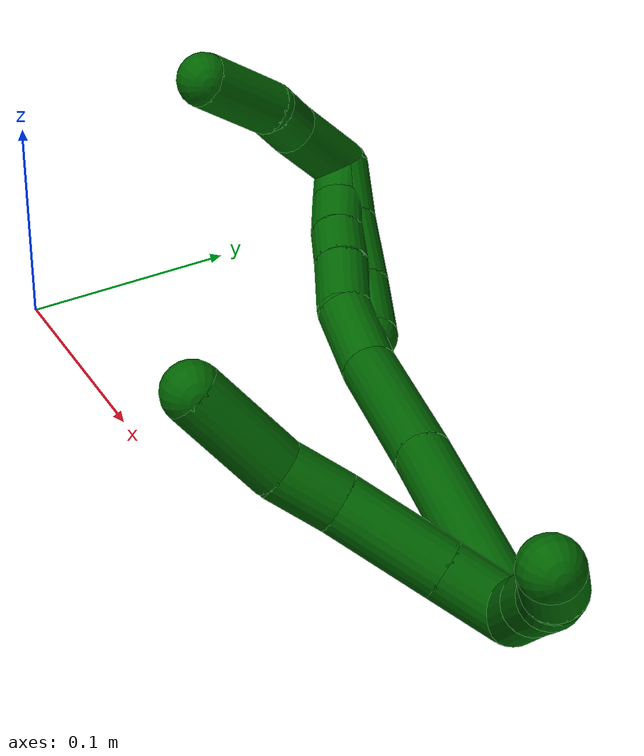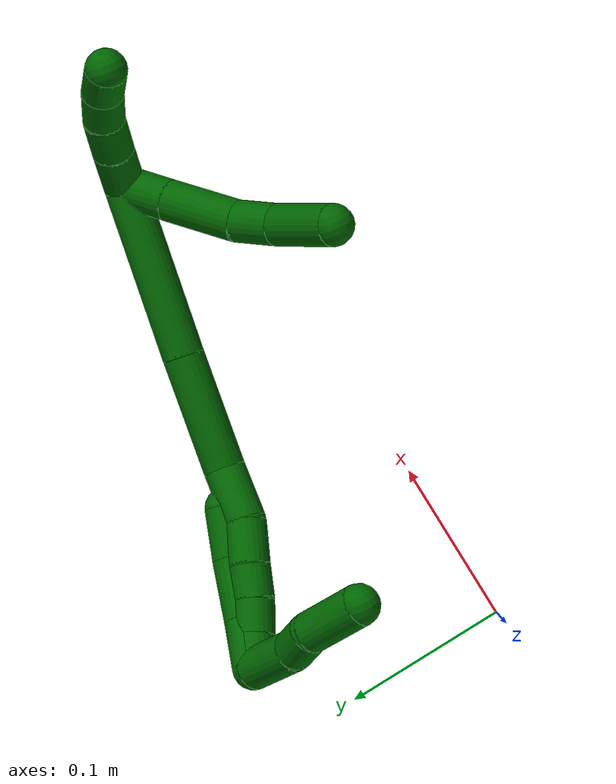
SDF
<sdf version="1.7">
 <world name="default">
  <model name="6">
   <static>0</static>
   <link name="6">
    <collision name="collision-cylinder-e_1_2_8">
     <pose>0.004514 -0.012886 -0.00698 2.06721 0.298803 0.49507</pose>
     <geometry><cylinder><radius>0.0125</radius><length>0.030669</length></cylinder></geometry>
     <surface>
      <friction><ode><mu>1.16</mu><mu2>1.16</mu2><slip1>0</slip1><slip2>0</slip2></ode></friction>
      <contact><ode><kp>1e+06</kp><kd>1</kd><max_vel>0</max_vel><min_depth>0.001</min_depth></ode></contact>
     </surface>
    </collision>
    <visual name="visual-cylinder-e_1_2_8">
     <pose>0.004514 -0.012886 -0.00698 2.06721 0.298803 0.49507</pose>
     <geometry><cylinder><radius>0.0125</radius><length>0.030669</length></cylinder></geometry>
     <material><ambient>0 0.392157 0.003922 1</ambient></material>
    </visual>
    <collision name="collision-cylinder-e_2_8_9">
     <pose>0.015858 -0.045481 -0.024307 2.05425 0.297699 0.486377</pose>
     <geometry><cylinder><radius>0.0125</radius><length>0.046569</length></cylinder></geometry>
     <surface>
      <friction><ode><mu>1.16</mu><mu2>1.16</mu2><slip1>0</slip1><slip2>0</slip2></ode></friction>
      <contact><ode><kp>1e+06</kp><kd>1</kd><max_vel>0</max_vel><min_depth>0.001</min_depth></ode></contact>
     </surface>
    </collision>
    <visual name="visual-cylinder-e_2_8_9">
     <pose>0.015858 -0.045481 -0.024307 2.05425 0.297699 0.486377</pose>
     <geometry><cylinder><radius>0.0125</radius><length>0.046569</length></cylinder></geometry>
     <material><ambient>0 0.392157 0.003922 1</ambient></material>
    </visual>
    <collision name="collision-cylinder-e_3_9_10">
     <pose>0.02712 -0.077339 -0.03817 1.85245 0.337096 0.445253</pose>
     <geometry><cylinder><radius>0.0125</radius><length>0.026804</length></cylinder></geometry>
     <surface>
      <friction><ode><mu>1.16</mu><mu2>1.16</mu2><slip1>0</slip1><slip2>0</slip2></ode></friction>
      <contact><ode><kp>1e+06</kp><kd>1</kd><max_vel>0</max_vel><min_depth>0.001</min_depth></ode></contact>
     </surface>
    </collision>
    <visual name="visual-cylinder-e_3_9_10">
     <pose>0.02712 -0.077339 -0.03817 1.85245 0.337096 0.445253</pose>
     <geometry><cylinder><radius>0.0125</radius><length>0.026804</length></cylinder></geometry>
     <material><ambient>0 0.392157 0.003922 1</ambient></material>
    </visual>
    <collision name="collision-cylinder-e_4_10_6">
     <pose>0.034405 -0.112206 -0.04364 1.65664 0.124416 0.135549</pose>
     <geometry><cylinder><radius>0.0125</radius><length>0.045959</length></cylinder></geometry>
     <surface>
      <friction><ode><mu>1.16</mu><mu2>1.16</mu2><slip1>0</slip1><slip2>0</slip2></ode></friction>
      <contact><ode><kp>1e+06</kp><kd>1</kd><max_vel>0</max_vel><min_depth>0.001</min_depth></ode></contact>
     </surface>
    </collision>
    <visual name="visual-cylinder-e_4_10_6">
     <pose>0.034405 -0.112206 -0.04364 1.65664 0.124416 0.135549</pose>
     <geometry><cylinder><radius>0.0125</radius><length>0.045959</length></cylinder></geometry>
     <material><ambient>0 0.392157 0.003922 1</ambient></material>
    </visual>
    <collision name="collision-cylinder-e_1_2_11">
     <pose>-0.003776 -0.007651 0.012824 0.537929 -0.247703 -0.068602</pose>
     <geometry><cylinder><radius>0.0125</radius><length>0.030805</length></cylinder></geometry>
     <surface>
      <friction><ode><mu>1.16</mu><mu2>1.16</mu2><slip1>0</slip1><slip2>0</slip2></ode></friction>
      <contact><ode><kp>1e+06</kp><kd>1</kd><max_vel>0</max_vel><min_depth>0.001</min_depth></ode></contact>
     </surface>
    </collision>
    <visual name="visual-cylinder-e_1_2_11">
     <pose>-0.003776 -0.007651 0.012824 0.537929 -0.247703 -0.068602</pose>
     <geometry><cylinder><radius>0.0125</radius><length>0.030805</length></cylinder></geometry>
     <material><ambient>0 0.392157 0.003922 1</ambient></material>
    </visual>
    <collision name="collision-cylinder-e_2_11_12">
     <pose>-0.010243 -0.021348 0.03623 0.519069 -0.217222 -0.057889</pose>
     <geometry><cylinder><radius>0.0125</radius><length>0.024963</length></cylinder></geometry>
     <surface>
      <friction><ode><mu>1.16</mu><mu2>1.16</mu2><slip1>0</slip1><slip2>0</slip2></ode></friction>
      <contact><ode><kp>1e+06</kp><kd>1</kd><max_vel>0</max_vel><min_depth>0.001</min_depth></ode></contact>
     </surface>
    </collision>
    <visual name="visual-cylinder-e_2_11_12">
     <pose>-0.010243 -0.021348 0.03623 0.519069 -0.217222 -0.057889</pose>
     <geometry><cylinder><radius>0.0125</radius><length>0.024963</length></cylinder></geometry>
     <material><ambient>0 0.392157 0.003922 1</ambient></material>
    </visual>
    <collision name="collision-cylinder-e_3_12_13">
     <pose>-0.013972 -0.033915 0.055379 0.650652 -0.096209 -0.032474</pose>
     <geometry><cylinder><radius>0.0125</radius><length>0.021631</length></cylinder></geometry>
     <surface>
      <friction><ode><mu>1.16</mu><mu2>1.16</mu2><slip1>0</slip1><slip2>0</slip2></ode></friction>
      <contact><ode><kp>1e+06</kp><kd>1</kd><max_vel>0</max_vel><min_depth>0.001</min_depth></ode></contact>
     </surface>
    </collision>
    <visual name="visual-cylinder-e_3_12_13">
     <pose>-0.013972 -0.033915 0.055379 0.650652 -0.096209 -0.032474</pose>
     <geometry><cylinder><radius>0.0125</radius><length>0.021631</length></cylinder></geometry>
     <material><ambient>0 0.392157 0.003922 1</ambient></material>
    </visual>
    <collision name="collision-cylinder-e_4_13_5">
     <pose>-0.016296 -0.049036 0.071162 0.872626 -0.113952 -0.053179</pose>
     <geometry><cylinder><radius>0.0125</radius><length>0.022601</length></cylinder></geometry>
     <surface>
      <friction><ode><mu>1.16</mu><mu2>1.16</mu2><slip1>0</slip1><slip2>0</slip2></ode></friction>
      <contact><ode><kp>1e+06</kp><kd>1</kd><max_vel>0</max_vel><min_depth>0.001</min_depth></ode></contact>
     </surface>
    </collision>
    <visual name="visual-cylinder-e_4_13_5">
     <pose>-0.016296 -0.049036 0.071162 0.872626 -0.113952 -0.053179</pose>
     <geometry><cylinder><radius>0.0125</radius><length>0.022601</length></cylinder></geometry>
     <material><ambient>0 0.392157 0.003922 1</ambient></material>
    </visual>
    <collision name="collision-cylinder-e_1_2_14">
     <pose>-0.007955 -0.00826 -0.051472 2.98247 -0.151437 -1.52113</pose>
     <geometry><cylinder><radius>0.0125</radius><length>0.105468</length></cylinder></geometry>
     <surface>
      <friction><ode><mu>1.16</mu><mu2>1.16</mu2><slip1>0</slip1><slip2>0</slip2></ode></friction>
      <contact><ode><kp>1e+06</kp><kd>1</kd><max_vel>0</max_vel><min_depth>0.001</min_depth></ode></contact>
     </surface>
    </collision>
    <visual name="visual-cylinder-e_1_2_14">
     <pose>-0.007955 -0.00826 -0.051472 2.98247 -0.151437 -1.52113</pose>
     <geometry><cylinder><radius>0.0125</radius><length>0.105468</length></cylinder></geometry>
     <material><ambient>0 0.392157 0.003922 1</ambient></material>
    </visual>
    <collision name="collision-cylinder-e_2_14_15">
     <pose>-0.020544 -0.022011 -0.138029 2.98634 -0.129736 -1.39159</pose>
     <geometry><cylinder><radius>0.0125</radius><length>0.071626</length></cylinder></geometry>
     <surface>
      <friction><ode><mu>1.16</mu><mu2>1.16</mu2><slip1>0</slip1><slip2>0</slip2></ode></friction>
      <contact><ode><kp>1e+06</kp><kd>1</kd><max_vel>0</max_vel><min_depth>0.001</min_depth></ode></contact>
     </surface>
    </collision>
    <visual name="visual-cylinder-e_2_14_15">
     <pose>-0.020544 -0.022011 -0.138029 2.98634 -0.129736 -1.39159</pose>
     <geometry><cylinder><radius>0.0125</radius><length>0.071626</length></cylinder></geometry>
     <material><ambient>0 0.392157 0.003922 1</ambient></material>
    </visual>
    <collision name="collision-cylinder-e_3_15_16">
     <pose>-0.029788 -0.035123 -0.187811 2.66324 -0.27161 -1.02155</pose>
     <geometry><cylinder><radius>0.0125</radius><length>0.03437</length></cylinder></geometry>
     <surface>
      <friction><ode><mu>1.16</mu><mu2>1.16</mu2><slip1>0</slip1><slip2>0</slip2></ode></friction>
      <contact><ode><kp>1e+06</kp><kd>1</kd><max_vel>0</max_vel><min_depth>0.001</min_depth></ode></contact>
     </surface>
    </collision>
    <visual name="visual-cylinder-e_3_15_16">
     <pose>-0.029788 -0.035123 -0.187811 2.66324 -0.27161 -1.02155</pose>
     <geometry><cylinder><radius>0.0125</radius><length>0.03437</length></cylinder></geometry>
     <material><ambient>0 0.392157 0.003922 1</ambient></material>
    </visual>
    <collision name="collision-cylinder-e_4_16_17">
     <pose>-0.04096 -0.046456 -0.213529 2.81674 -0.513703 -2.02597</pose>
     <geometry><cylinder><radius>0.0125</radius><length>0.026706</length></cylinder></geometry>
     <surface>
      <friction><ode><mu>1.16</mu><mu2>1.16</mu2><slip1>0</slip1><slip2>0</slip2></ode></friction>
      <contact><ode><kp>1e+06</kp><kd>1</kd><max_vel>0</max_vel><min_depth>0.001</min_depth></ode></contact>
     </surface>
    </collision>
    <visual name="visual-cylinder-e_4_16_17">
     <pose>-0.04096 -0.046456 -0.213529 2.81674 -0.513703 -2.02597</pose>
     <geometry><cylinder><radius>0.0125</radius><length>0.026706</length></cylinder></geometry>
     <material><ambient>0 0.392157 0.003922 1</ambient></material>
    </visual>
    <collision name="collision-cylinder-e_5_17_18">
     <pose>-0.051962 -0.052697 -0.233285 2.85969 -0.454241 -2.04034</pose>
     <geometry><cylinder><radius>0.0125</radius><length>0.020239</length></cylinder></geometry>
     <surface>
      <friction><ode><mu>1.16</mu><mu2>1.16</mu2><slip1>0</slip1><slip2>0</slip2></ode></friction>
      <contact><ode><kp>1e+06</kp><kd>1</kd><max_vel>0</max_vel><min_depth>0.001</min_depth></ode></contact>
     </surface>
    </collision>
    <visual name="visual-cylinder-e_5_17_18">
     <pose>-0.051962 -0.052697 -0.233285 2.85969 -0.454241 -2.04034</pose>
     <geometry><cylinder><radius>0.0125</radius><length>0.020239</length></cylinder></geometry>
     <material><ambient>0 0.392157 0.003922 1</ambient></material>
    </visual>
    <collision name="collision-cylinder-e_6_18_19">
     <pose>-0.06196 -0.057132 -0.250993 2.9324 -0.544694 -2.42249</pose>
     <geometry><cylinder><radius>0.0125</radius><length>0.021453</length></cylinder></geometry>
     <surface>
      <friction><ode><mu>1.16</mu><mu2>1.16</mu2><slip1>0</slip1><slip2>0</slip2></ode></friction>
      <contact><ode><kp>1e+06</kp><kd>1</kd><max_vel>0</max_vel><min_depth>0.001</min_depth></ode></contact>
     </surface>
    </collision>
    <visual name="visual-cylinder-e_6_18_19">
     <pose>-0.06196 -0.057132 -0.250993 2.9324 -0.544694 -2.42249</pose>
     <geometry><cylinder><radius>0.0125</radius><length>0.021453</length></cylinder></geometry>
     <material><ambient>0 0.392157 0.003922 1</ambient></material>
    </visual>
    <collision name="collision-cylinder-e_7_19_1">
     <pose>-0.073816 -0.06246 -0.267038 2.69071 -0.675815 -1.98508</pose>
     <geometry><cylinder><radius>0.0125</radius><length>0.020138</length></cylinder></geometry>
     <surface>
      <friction><ode><mu>1.16</mu><mu2>1.16</mu2><slip1>0</slip1><slip2>0</slip2></ode></friction>
      <contact><ode><kp>1e+06</kp><kd>1</kd><max_vel>0</max_vel><min_depth>0.001</min_depth></ode></contact>
     </surface>
    </collision>
    <visual name="visual-cylinder-e_7_19_1">
     <pose>-0.073816 -0.06246 -0.267038 2.69071 -0.675815 -1.98508</pose>
     <geometry><cylinder><radius>0.0125</radius><length>0.020138</length></cylinder></geometry>
     <material><ambient>0 0.392157 0.003922 1</ambient></material>
    </visual>
    <collision name="collision-cylinder-e_1_1_20">
     <pose>-0.075866 -0.083471 -0.268925 1.28422 0.227703 0.170607</pose>
     <geometry><cylinder><radius>0.0125</radius><length>0.037643</length></cylinder></geometry>
     <surface>
      <friction><ode><mu>1.16</mu><mu2>1.16</mu2><slip1>0</slip1><slip2>0</slip2></ode></friction>
      <contact><ode><kp>1e+06</kp><kd>1</kd><max_vel>0</max_vel><min_depth>0.001</min_depth></ode></contact>
     </surface>
    </collision>
    <visual name="visual-cylinder-e_1_1_20">
     <pose>-0.075866 -0.083471 -0.268925 1.28422 0.227703 0.170607</pose>
     <geometry><cylinder><radius>0.0125</radius><length>0.037643</length></cylinder></geometry>
     <material><ambient>0 0.392157 0.003922 1</ambient></material>
    </visual>
    <collision name="collision-cylinder-e_2_20_21">
     <pose>-0.069988 -0.110477 -0.258088 1.03008 0.147248 0.083444</pose>
     <geometry><cylinder><radius>0.0125</radius><length>0.022211</length></cylinder></geometry>
     <surface>
      <friction><ode><mu>1.16</mu><mu2>1.16</mu2><slip1>0</slip1><slip2>0</slip2></ode></friction>
      <contact><ode><kp>1e+06</kp><kd>1</kd><max_vel>0</max_vel><min_depth>0.001</min_depth></ode></contact>
     </surface>
    </collision>
    <visual name="visual-cylinder-e_2_20_21">
     <pose>-0.069988 -0.110477 -0.258088 1.03008 0.147248 0.083444</pose>
     <geometry><cylinder><radius>0.0125</radius><length>0.022211</length></cylinder></geometry>
     <material><ambient>0 0.392157 0.003922 1</ambient></material>
    </visual>
    <collision name="collision-cylinder-e_3_21_4">
     <pose>-0.060314 -0.13731 -0.246522 1.24356 0.412353 0.297536</pose>
     <geometry><cylinder><radius>0.0125</radius><length>0.040147</length></cylinder></geometry>
     <surface>
      <friction><ode><mu>1.16</mu><mu2>1.16</mu2><slip1>0</slip1><slip2>0</slip2></ode></friction>
      <contact><ode><kp>1e+06</kp><kd>1</kd><max_vel>0</max_vel><min_depth>0.001</min_depth></ode></contact>
     </surface>
    </collision>
    <visual name="visual-cylinder-e_3_21_4">
     <pose>-0.060314 -0.13731 -0.246522 1.24356 0.412353 0.297536</pose>
     <geometry><cylinder><radius>0.0125</radius><length>0.040147</length></cylinder></geometry>
     <material><ambient>0 0.392157 0.003922 1</ambient></material>
    </visual>
    <collision name="collision-cylinder-e_1_1_22">
     <pose>-0.072372 -0.0585 -0.263255 -0.597378 0.532976 -0.167708</pose>
     <geometry><cylinder><radius>0.0125</radius><length>0.03048</length></cylinder></geometry>
     <surface>
      <friction><ode><mu>1.16</mu><mu2>1.16</mu2><slip1>0</slip1><slip2>0</slip2></ode></friction>
      <contact><ode><kp>1e+06</kp><kd>1</kd><max_vel>0</max_vel><min_depth>0.001</min_depth></ode></contact>
     </surface>
    </collision>
    <visual name="visual-cylinder-e_1_1_22">
     <pose>-0.072372 -0.0585 -0.263255 -0.597378 0.532976 -0.167708</pose>
     <geometry><cylinder><radius>0.0125</radius><length>0.03048</length></cylinder></geometry>
     <material><ambient>0 0.392157 0.003922 1</ambient></material>
    </visual>
    <collision name="collision-cylinder-e_2_22_23">
     <pose>-0.05644 -0.044007 -0.236732 -0.425949 0.444127 -0.097577</pose>
     <geometry><cylinder><radius>0.0125</radius><length>0.038114</length></cylinder></geometry>
     <surface>
      <friction><ode><mu>1.16</mu><mu2>1.16</mu2><slip1>0</slip1><slip2>0</slip2></ode></friction>
      <contact><ode><kp>1e+06</kp><kd>1</kd><max_vel>0</max_vel><min_depth>0.001</min_depth></ode></contact>
     </surface>
    </collision>
    <visual name="visual-cylinder-e_2_22_23">
     <pose>-0.05644 -0.044007 -0.236732 -0.425949 0.444127 -0.097577</pose>
     <geometry><cylinder><radius>0.0125</radius><length>0.038114</length></cylinder></geometry>
     <material><ambient>0 0.392157 0.003922 1</ambient></material>
    </visual>
    <collision name="collision-cylinder-e_3_23_3">
     <pose>-0.041796 -0.032955 -0.2073 -0.278951 0.423694 -0.060369</pose>
     <geometry><cylinder><radius>0.0125</radius><length>0.031406</length></cylinder></geometry>
     <surface>
      <friction><ode><mu>1.16</mu><mu2>1.16</mu2><slip1>0</slip1><slip2>0</slip2></ode></friction>
      <contact><ode><kp>1e+06</kp><kd>1</kd><max_vel>0</max_vel><min_depth>0.001</min_depth></ode></contact>
     </surface>
    </collision>
    <visual name="visual-cylinder-e_3_23_3">
     <pose>-0.041796 -0.032955 -0.2073 -0.278951 0.423694 -0.060369</pose>
     <geometry><cylinder><radius>0.0125</radius><length>0.031406</length></cylinder></geometry>
     <material><ambient>0 0.392157 0.003922 1</ambient></material>
    </visual>
    <collision name="collision-sphere-3">
     <pose>-0.03534 -0.029014 -0.193539 0 -0 0</pose>
     <geometry><sphere><radius>0.0125</radius></sphere></geometry>
     <surface>
      <friction><ode><mu>1.16</mu><mu2>1.16</mu2><slip1>0</slip1><slip2>0</slip2></ode></friction>
      <contact><ode><kp>1e+06</kp><kd>1</kd><max_vel>0</max_vel><min_depth>0.001</min_depth></ode></contact>
     </surface>
    </collision>
    <visual name="visual-sphere-3">
     <pose>-0.03534 -0.029014 -0.193539 0 -0 0</pose>
     <geometry><sphere><radius>0.0125</radius></sphere></geometry>
     <material><ambient>0 0.392157 0.003922 1</ambient></material>
    </visual>
    <collision name="collision-sphere-23">
     <pose>-0.048252 -0.036897 -0.221061 0 -0 0</pose>
     <geometry><sphere><radius>0.0125</radius></sphere></geometry>
     <surface>
      <friction><ode><mu>1.16</mu><mu2>1.16</mu2><slip1>0</slip1><slip2>0</slip2></ode></friction>
      <contact><ode><kp>1e+06</kp><kd>1</kd><max_vel>0</max_vel><min_depth>0.001</min_depth></ode></contact>
     </surface>
    </collision>
    <visual name="visual-sphere-23">
     <pose>-0.048252 -0.036897 -0.221061 0 -0 0</pose>
     <geometry><sphere><radius>0.0125</radius></sphere></geometry>
     <material><ambient>0 0.392157 0.003922 1</ambient></material>
    </visual>
    <collision name="collision-sphere-22">
     <pose>-0.064628 -0.051117 -0.252402 0 -0 0</pose>
     <geometry><sphere><radius>0.0125</radius></sphere></geometry>
     <surface>
      <friction><ode><mu>1.16</mu><mu2>1.16</mu2><slip1>0</slip1><slip2>0</slip2></ode></friction>
      <contact><ode><kp>1e+06</kp><kd>1</kd><max_vel>0</max_vel><min_depth>0.001</min_depth></ode></contact>
     </surface>
    </collision>
    <visual name="visual-sphere-22">
     <pose>-0.064628 -0.051117 -0.252402 0 -0 0</pose>
     <geometry><sphere><radius>0.0125</radius></sphere></geometry>
     <material><ambient>0 0.392157 0.003922 1</ambient></material>
    </visual>
    <collision name="collision-sphere-4">
     <pose>-0.052269 -0.154725 -0.240611 0 -0 0</pose>
     <geometry><sphere><radius>0.0125</radius></sphere></geometry>
     <surface>
      <friction><ode><mu>1.16</mu><mu2>1.16</mu2><slip1>0</slip1><slip2>0</slip2></ode></friction>
      <contact><ode><kp>1e+06</kp><kd>1</kd><max_vel>0</max_vel><min_depth>0.001</min_depth></ode></contact>
     </surface>
    </collision>
    <visual name="visual-sphere-4">
     <pose>-0.052269 -0.154725 -0.240611 0 -0 0</pose>
     <geometry><sphere><radius>0.0125</radius></sphere></geometry>
     <material><ambient>0 0.392157 0.003922 1</ambient></material>
    </visual>
    <collision name="collision-sphere-21">
     <pose>-0.068359 -0.119895 -0.252433 0 -0 0</pose>
     <geometry><sphere><radius>0.0125</radius></sphere></geometry>
     <surface>
      <friction><ode><mu>1.16</mu><mu2>1.16</mu2><slip1>0</slip1><slip2>0</slip2></ode></friction>
      <contact><ode><kp>1e+06</kp><kd>1</kd><max_vel>0</max_vel><min_depth>0.001</min_depth></ode></contact>
     </surface>
    </collision>
    <visual name="visual-sphere-21">
     <pose>-0.068359 -0.119895 -0.252433 0 -0 0</pose>
     <geometry><sphere><radius>0.0125</radius></sphere></geometry>
     <material><ambient>0 0.392157 0.003922 1</ambient></material>
    </visual>
    <collision name="collision-sphere-20">
     <pose>-0.071617 -0.101059 -0.263742 0 -0 0</pose>
     <geometry><sphere><radius>0.0125</radius></sphere></geometry>
     <surface>
      <friction><ode><mu>1.16</mu><mu2>1.16</mu2><slip1>0</slip1><slip2>0</slip2></ode></friction>
      <contact><ode><kp>1e+06</kp><kd>1</kd><max_vel>0</max_vel><min_depth>0.001</min_depth></ode></contact>
     </surface>
    </collision>
    <visual name="visual-sphere-20">
     <pose>-0.071617 -0.101059 -0.263742 0 -0 0</pose>
     <geometry><sphere><radius>0.0125</radius></sphere></geometry>
     <material><ambient>0 0.392157 0.003922 1</ambient></material>
    </visual>
    <collision name="collision-sphere-11">
     <pose>-0.007553 -0.015302 0.025647 0 -0 0</pose>
     <geometry><sphere><radius>0.0125</radius></sphere></geometry>
     <surface>
      <friction><ode><mu>1.16</mu><mu2>1.16</mu2><slip1>0</slip1><slip2>0</slip2></ode></friction>
      <contact><ode><kp>1e+06</kp><kd>1</kd><max_vel>0</max_vel><min_depth>0.001</min_depth></ode></contact>
     </surface>
    </collision>
    <visual name="visual-sphere-11">
     <pose>-0.007553 -0.015302 0.025647 0 -0 0</pose>
     <geometry><sphere><radius>0.0125</radius></sphere></geometry>
     <material><ambient>0 0.392157 0.003922 1</ambient></material>
    </visual>
    <collision name="collision-sphere-6">
     <pose>0.037256 -0.134924 -0.045595 0 -0 0</pose>
     <geometry><sphere><radius>0.0125</radius></sphere></geometry>
     <surface>
      <friction><ode><mu>1.16</mu><mu2>1.16</mu2><slip1>0</slip1><slip2>0</slip2></ode></friction>
      <contact><ode><kp>1e+06</kp><kd>1</kd><max_vel>0</max_vel><min_depth>0.001</min_depth></ode></contact>
     </surface>
    </collision>
    <visual name="visual-sphere-6">
     <pose>0.037256 -0.134924 -0.045595 0 -0 0</pose>
     <geometry><sphere><radius>0.0125</radius></sphere></geometry>
     <material><ambient>0 0.392157 0.003922 1</ambient></material>
    </visual>
    <collision name="collision-sphere-10">
     <pose>0.031553 -0.089489 -0.041685 0 -0 0</pose>
     <geometry><sphere><radius>0.0125</radius></sphere></geometry>
     <surface>
      <friction><ode><mu>1.16</mu><mu2>1.16</mu2><slip1>0</slip1><slip2>0</slip2></ode></friction>
      <contact><ode><kp>1e+06</kp><kd>1</kd><max_vel>0</max_vel><min_depth>0.001</min_depth></ode></contact>
     </surface>
    </collision>
    <visual name="visual-sphere-10">
     <pose>0.031553 -0.089489 -0.041685 0 -0 0</pose>
     <geometry><sphere><radius>0.0125</radius></sphere></geometry>
     <material><ambient>0 0.392157 0.003922 1</ambient></material>
    </visual>
    <collision name="collision-sphere-9">
     <pose>0.022688 -0.06519 -0.034654 0 -0 0</pose>
     <geometry><sphere><radius>0.0125</radius></sphere></geometry>
     <surface>
      <friction><ode><mu>1.16</mu><mu2>1.16</mu2><slip1>0</slip1><slip2>0</slip2></ode></friction>
      <contact><ode><kp>1e+06</kp><kd>1</kd><max_vel>0</max_vel><min_depth>0.001</min_depth></ode></contact>
     </surface>
    </collision>
    <visual name="visual-sphere-9">
     <pose>0.022688 -0.06519 -0.034654 0 -0 0</pose>
     <geometry><sphere><radius>0.0125</radius></sphere></geometry>
     <material><ambient>0 0.392157 0.003922 1</ambient></material>
    </visual>
    <collision name="collision-sphere-2">
     <geometry><sphere><radius>0.0125</radius></sphere></geometry>
     <surface>
      <friction><ode><mu>1.16</mu><mu2>1.16</mu2><slip1>0</slip1><slip2>0</slip2></ode></friction>
      <contact><ode><kp>1e+06</kp><kd>1</kd><max_vel>0</max_vel><min_depth>0.001</min_depth></ode></contact>
     </surface>
    </collision>
    <visual name="visual-sphere-2">
     <geometry><sphere><radius>0.0125</radius></sphere></geometry>
     <material><ambient>0 0.392157 0.003922 1</ambient></material>
    </visual>
    <collision name="collision-sphere-19">
     <pose>-0.067518 -0.059037 -0.259967 0 -0 0</pose>
     <geometry><sphere><radius>0.0125</radius></sphere></geometry>
     <surface>
      <friction><ode><mu>1.16</mu><mu2>1.16</mu2><slip1>0</slip1><slip2>0</slip2></ode></friction>
      <contact><ode><kp>1e+06</kp><kd>1</kd><max_vel>0</max_vel><min_depth>0.001</min_depth></ode></contact>
     </surface>
    </collision>
    <visual name="visual-sphere-19">
     <pose>-0.067518 -0.059037 -0.259967 0 -0 0</pose>
     <geometry><sphere><radius>0.0125</radius></sphere></geometry>
     <material><ambient>0 0.392157 0.003922 1</ambient></material>
    </visual>
    <collision name="collision-sphere-8">
     <pose>0.009028 -0.025772 -0.01396 0 -0 0</pose>
     <geometry><sphere><radius>0.0125</radius></sphere></geometry>
     <surface>
      <friction><ode><mu>1.16</mu><mu2>1.16</mu2><slip1>0</slip1><slip2>0</slip2></ode></friction>
      <contact><ode><kp>1e+06</kp><kd>1</kd><max_vel>0</max_vel><min_depth>0.001</min_depth></ode></contact>
     </surface>
    </collision>
    <visual name="visual-sphere-8">
     <pose>0.009028 -0.025772 -0.01396 0 -0 0</pose>
     <geometry><sphere><radius>0.0125</radius></sphere></geometry>
     <material><ambient>0 0.392157 0.003922 1</ambient></material>
    </visual>
    <collision name="collision-sphere-12">
     <pose>-0.012933 -0.027394 0.046813 0 -0 0</pose>
     <geometry><sphere><radius>0.0125</radius></sphere></geometry>
     <surface>
      <friction><ode><mu>1.16</mu><mu2>1.16</mu2><slip1>0</slip1><slip2>0</slip2></ode></friction>
      <contact><ode><kp>1e+06</kp><kd>1</kd><max_vel>0</max_vel><min_depth>0.001</min_depth></ode></contact>
     </surface>
    </collision>
    <visual name="visual-sphere-12">
     <pose>-0.012933 -0.027394 0.046813 0 -0 0</pose>
     <geometry><sphere><radius>0.0125</radius></sphere></geometry>
     <material><ambient>0 0.392157 0.003922 1</ambient></material>
    </visual>
    <collision name="collision-sphere-13">
     <pose>-0.015011 -0.040436 0.063945 0 -0 0</pose>
     <geometry><sphere><radius>0.0125</radius></sphere></geometry>
     <surface>
      <friction><ode><mu>1.16</mu><mu2>1.16</mu2><slip1>0</slip1><slip2>0</slip2></ode></friction>
      <contact><ode><kp>1e+06</kp><kd>1</kd><max_vel>0</max_vel><min_depth>0.001</min_depth></ode></contact>
     </surface>
    </collision>
    <visual name="visual-sphere-13">
     <pose>-0.015011 -0.040436 0.063945 0 -0 0</pose>
     <geometry><sphere><radius>0.0125</radius></sphere></geometry>
     <material><ambient>0 0.392157 0.003922 1</ambient></material>
    </visual>
    <collision name="collision-sphere-5">
     <pose>-0.01758 -0.057636 0.078379 0 -0 0</pose>
     <geometry><sphere><radius>0.0125</radius></sphere></geometry>
     <surface>
      <friction><ode><mu>1.16</mu><mu2>1.16</mu2><slip1>0</slip1><slip2>0</slip2></ode></friction>
      <contact><ode><kp>1e+06</kp><kd>1</kd><max_vel>0</max_vel><min_depth>0.001</min_depth></ode></contact>
     </surface>
    </collision>
    <visual name="visual-sphere-5">
     <pose>-0.01758 -0.057636 0.078379 0 -0 0</pose>
     <geometry><sphere><radius>0.0125</radius></sphere></geometry>
     <material><ambient>0 0.392157 0.003922 1</ambient></material>
    </visual>
    <collision name="collision-sphere-14">
     <pose>-0.015911 -0.01652 -0.102944 0 -0 0</pose>
     <geometry><sphere><radius>0.0125</radius></sphere></geometry>
     <surface>
      <friction><ode><mu>1.16</mu><mu2>1.16</mu2><slip1>0</slip1><slip2>0</slip2></ode></friction>
      <contact><ode><kp>1e+06</kp><kd>1</kd><max_vel>0</max_vel><min_depth>0.001</min_depth></ode></contact>
     </surface>
    </collision>
    <visual name="visual-sphere-14">
     <pose>-0.015911 -0.01652 -0.102944 0 -0 0</pose>
     <geometry><sphere><radius>0.0125</radius></sphere></geometry>
     <material><ambient>0 0.392157 0.003922 1</ambient></material>
    </visual>
    <collision name="collision-sphere-15">
     <pose>-0.025177 -0.027503 -0.173114 0 -0 0</pose>
     <geometry><sphere><radius>0.0125</radius></sphere></geometry>
     <surface>
      <friction><ode><mu>1.16</mu><mu2>1.16</mu2><slip1>0</slip1><slip2>0</slip2></ode></friction>
      <contact><ode><kp>1e+06</kp><kd>1</kd><max_vel>0</max_vel><min_depth>0.001</min_depth></ode></contact>
     </surface>
    </collision>
    <visual name="visual-sphere-15">
     <pose>-0.025177 -0.027503 -0.173114 0 -0 0</pose>
     <geometry><sphere><radius>0.0125</radius></sphere></geometry>
     <material><ambient>0 0.392157 0.003922 1</ambient></material>
    </visual>
    <collision name="collision-sphere-16">
     <pose>-0.034398 -0.042744 -0.202507 0 -0 0</pose>
     <geometry><sphere><radius>0.0125</radius></sphere></geometry>
     <surface>
      <friction><ode><mu>1.16</mu><mu2>1.16</mu2><slip1>0</slip1><slip2>0</slip2></ode></friction>
      <contact><ode><kp>1e+06</kp><kd>1</kd><max_vel>0</max_vel><min_depth>0.001</min_depth></ode></contact>
     </surface>
    </collision>
    <visual name="visual-sphere-16">
     <pose>-0.034398 -0.042744 -0.202507 0 -0 0</pose>
     <geometry><sphere><radius>0.0125</radius></sphere></geometry>
     <material><ambient>0 0.392157 0.003922 1</ambient></material>
    </visual>
    <collision name="collision-sphere-17">
     <pose>-0.047522 -0.050167 -0.22455 0 -0 0</pose>
     <geometry><sphere><radius>0.0125</radius></sphere></geometry>
     <surface>
      <friction><ode><mu>1.16</mu><mu2>1.16</mu2><slip1>0</slip1><slip2>0</slip2></ode></friction>
      <contact><ode><kp>1e+06</kp><kd>1</kd><max_vel>0</max_vel><min_depth>0.001</min_depth></ode></contact>
     </surface>
    </collision>
    <visual name="visual-sphere-17">
     <pose>-0.047522 -0.050167 -0.22455 0 -0 0</pose>
     <geometry><sphere><radius>0.0125</radius></sphere></geometry>
     <material><ambient>0 0.392157 0.003922 1</ambient></material>
    </visual>
    <collision name="collision-sphere-18">
     <pose>-0.056402 -0.055227 -0.242019 0 -0 0</pose>
     <geometry><sphere><radius>0.0125</radius></sphere></geometry>
     <surface>
      <friction><ode><mu>1.16</mu><mu2>1.16</mu2><slip1>0</slip1><slip2>0</slip2></ode></friction>
      <contact><ode><kp>1e+06</kp><kd>1</kd><max_vel>0</max_vel><min_depth>0.001</min_depth></ode></contact>
     </surface>
    </collision>
    <visual name="visual-sphere-18">
     <pose>-0.056402 -0.055227 -0.242019 0 -0 0</pose>
     <geometry><sphere><radius>0.0125</radius></sphere></geometry>
     <material><ambient>0 0.392157 0.003922 1</ambient></material>
    </visual>
    <collision name="collision-sphere-1">
     <pose>-0.080115 -0.065884 -0.274108 0 -0 0</pose>
     <geometry><sphere><radius>0.0125</radius></sphere></geometry>
     <surface>
      <friction><ode><mu>1.16</mu><mu2>1.16</mu2><slip1>0</slip1><slip2>0</slip2></ode></friction>
      <contact><ode><kp>1e+06</kp><kd>1</kd><max_vel>0</max_vel><min_depth>0.001</min_depth></ode></contact>
     </surface>
    </collision>
    <visual name="visual-sphere-1">
     <pose>-0.080115 -0.065884 -0.274108 0 -0 0</pose>
     <geometry><sphere><radius>0.0125</radius></sphere></geometry>
     <material><ambient>0 0.392157 0.003922 1</ambient></material>
    </visual>
    <inertial>
     <pose>-0.024873 -0.048537 -0.12338 0 -0 0</pose>
     <mass>0.75</mass>
     <inertia>
      <ixx>-6.3e-05</ixx>
      <ixy>0</ixy>
      <ixz>0</ixz>
      <iyy>-0.000141</iyy>
      <iyz>0</iyz>
      <izz>6.2e-05</izz>
     </inertia>
    </inertial>
   </link>
   <pose>0.332036 0.054962 0.047051 -1.25535 0.539408 -1.58273</pose>
  </model>
 </world>
</sdf>
